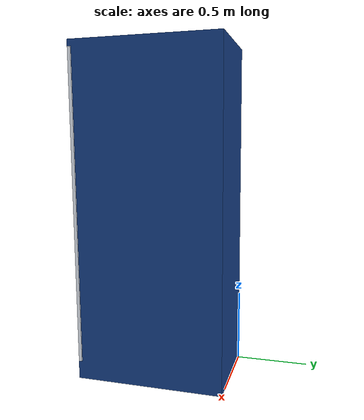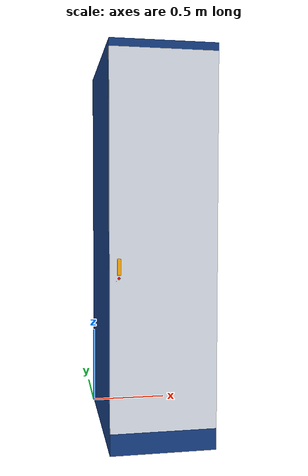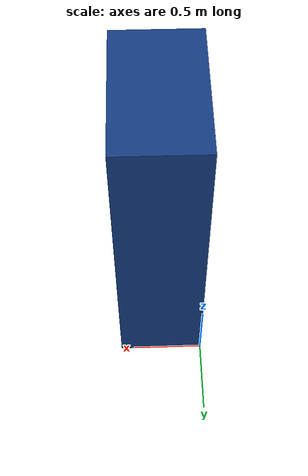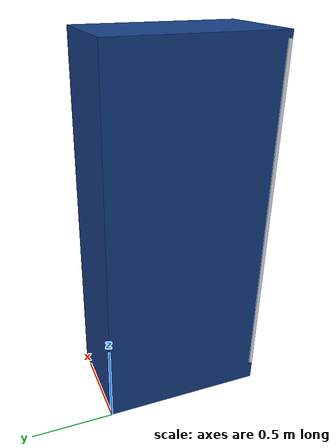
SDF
<?xml version="1.0"?>
<sdf version="1.7">
  <model name="omr_cabinet">
    <self_collide>false</self_collide>
    <allow_auto_disable>false</allow_auto_disable>

    <link name="cabinet_shell">
      <inertial>
        <!-- Approximate 100 kg shell represented by its overall envelope. -->
        <pose>0.300 -0.5025 1.125 0 0 0</pose>
        <mass>100.0</mass>
        <inertia>
          <ixx>50.604375</ixx>
          <ixy>0.0</ixy>
          <ixz>0.0</ixz>
          <iyy>45.187500</iyy>
          <iyz>0.0</iyz>
          <izz>11.416875</izz>
        </inertia>
      </inertial>

      <visual name="cabinet_shell_visual">
        <pose>0 0 0 1.57079632679 0 0</pose>
        <geometry>
          <mesh>
            <uri>model://omr_bringup/urdf/environment/meshes/cabinet_shell.STL</uri>
            <scale>0.001 0.001 0.001</scale>
          </mesh>
        </geometry>
        <material>
          <!-- Dark blue shell: intentionally high contrast during grasp tests. -->
          <ambient>0.04 0.10 0.22 1.0</ambient>
          <diffuse>0.08 0.24 0.52 1.0</diffuse>
          <specular>0.20 0.30 0.45 1.0</specular>
        </material>
      </visual>

      <!-- Five primitive collisions preserve the open front of the cabinet.
           Dimensions are approximated from the shell STL's principal planes. -->
      <collision name="shell_back_collision">
        <pose>0.300 -0.015 1.125 0 0 0</pose>
        <geometry><box><size>0.600 0.030 2.250</size></box></geometry>
      </collision>
      <collision name="shell_left_collision">
        <pose>0.014 -0.5175 1.1645 0 0 0</pose>
        <geometry><box><size>0.028 0.975 2.085</size></box></geometry>
      </collision>
      <collision name="shell_right_collision">
        <pose>0.586 -0.5175 1.1645 0 0 0</pose>
        <geometry><box><size>0.028 0.975 2.085</size></box></geometry>
      </collision>
      <collision name="shell_bottom_collision">
        <pose>0.300 -0.5175 0.061 0 0 0</pose>
        <geometry><box><size>0.600 1.005 0.122</size></box></geometry>
      </collision>
      <collision name="shell_top_collision">
        <pose>0.300 -0.5175 2.2285 0 0 0</pose>
        <geometry><box><size>0.600 1.005 0.043</size></box></geometry>
      </collision>
    </link>

    <!-- Right-side hinge when viewed from the front. The link origin is the
         lower hinge axis point; the closed door extends toward model -X. -->
    <link name="cabinet_door">
      <pose>0.600 -0.98425 0.122 0 0 0</pose>
      <inertial>
        <!-- Approximate 15 kg, 0.600 x 0.024 x 2.085 m door. -->
        <pose>-0.300 -0.012 1.0425 0 0 0</pose>
        <mass>15.0</mass>
        <inertia>
          <ixx>5.43475125</ixx>
          <ixy>0.0</ixy>
          <ixz>0.0</ixz>
          <iyy>5.88403125</iyy>
          <iyz>0.0</iyz>
          <izz>0.45072000</izz>
        </inertia>
      </inertial>

      <visual name="cabinet_door_visual">
        <pose>-0.600 0 0 1.57079632679 0 0</pose>
        <geometry>
          <mesh>
            <uri>model://omr_bringup/urdf/environment/meshes/cabinet_door_1.STL</uri>
            <scale>0.001 0.001 0.001</scale>
          </mesh>
        </geometry>
        <material>
          <!-- Light gray door remains easy to distinguish from the shell. -->
          <ambient>0.65 0.68 0.72 1.0</ambient>
          <diffuse>0.88 0.90 0.94 1.0</diffuse>
          <specular>0.35 0.35 0.35 1.0</specular>
        </material>
      </visual>

      <collision name="cabinet_door_collision">
        <pose>-0.300 -0.012 1.0425 0 0 0</pose>
        <geometry><box><size>0.600 0.024 2.085</size></box></geometry>
      </collision>

      <visual name="cabinet_handle_visual">
        <pose>-0.55900 -0.00800 0.87040 1.57079632679 0 0</pose>
        <geometry>
          <mesh>
            <uri>model://omr_bringup/urdf/environment/meshes/handle.STL</uri>
            <scale>0.001 0.001 0.001</scale>
          </mesh>
        </geometry>
        <material>
          <ambient>0.75 0.42 0.01 1.0</ambient>
          <diffuse>1.00 0.68 0.04 1.0</diffuse>
          <specular>0.45 0.30 0.05 1.0</specular>
        </material>
      </visual>

      <!-- A vertical cylinder is stable for contact and conservatively
           approximates the handle's 21 x 19 x 92.5 mm visual envelope. -->
      <collision name="cabinet_handle_collision">
        <pose>-0.54850 -0.01750 0.91665 0 0 0</pose>
        <geometry>
          <cylinder>
            <radius>0.0105</radius>
            <length>0.0925</length>
          </cylinder>
        </geometry>
        <surface>
          <friction>
            <ode>
              <mu>1.0</mu>
              <mu2>1.0</mu2>
            </ode>
          </friction>
        </surface>
      </collision>

      <!-- The button has its own supplied centre rather than being centred on
           the handle. It belongs to cabinet_door and follows the joint. -->
      <visual name="cabinet_button_visual">
        <pose>-0.55525 -0.02100 0.84775 1.57079632679 0 0</pose>
        <geometry>
          <mesh>
            <uri>model://omr_bringup/urdf/environment/meshes/button.STL</uri>
            <scale>0.001 0.001 0.001</scale>
          </mesh>
        </geometry>
        <material>
          <ambient>0.55 0.01 0.01 1.0</ambient>
          <diffuse>0.95 0.02 0.02 1.0</diffuse>
          <specular>0.55 0.12 0.12 1.0</specular>
        </material>
      </visual>

      <collision name="cabinet_button_collision">
        <pose>-0.54850 -0.02250 0.85450 0 0 0</pose>
        <geometry><box><size>0.0135 0.003 0.0135</size></box></geometry>
      </collision>
    </link>

    <joint name="cabinet_world_fixed_joint" type="fixed">
      <parent>world</parent>
      <child>cabinet_shell</child>
    </joint>

    <joint name="cabinet_door_joint" type="revolute">
      <parent>cabinet_shell</parent>
      <child>cabinet_door</child>
      <axis>
        <!-- Positive rotation opens the right-hinged door outward. -->
        <xyz expressed_in="__model__">0 0 1</xyz>
        <limit>
          <lower>0.0</lower>
          <upper>1.57079632679</upper>
          <effort>50.0</effort>
          <velocity>1.0</velocity>
        </limit>
        <!-- Provisional values; replace with measured hinge behaviour. -->
        <dynamics>
          <damping>0.5</damping>
          <friction>0.2</friction>
        </dynamics>
      </axis>
    </joint>

    <plugin filename="gz-sim-joint-state-publisher-system"
            name="gz::sim::systems::JointStatePublisher">
      <topic>/cabinet/joint_states</topic>
      <joint_name>cabinet_door_joint</joint_name>
    </plugin>

    <plugin filename="gz-sim-apply-joint-force-system"
            name="gz::sim::systems::ApplyJointForce">
      <joint_name>cabinet_door_joint</joint_name>
    </plugin>
  </model>
</sdf>
